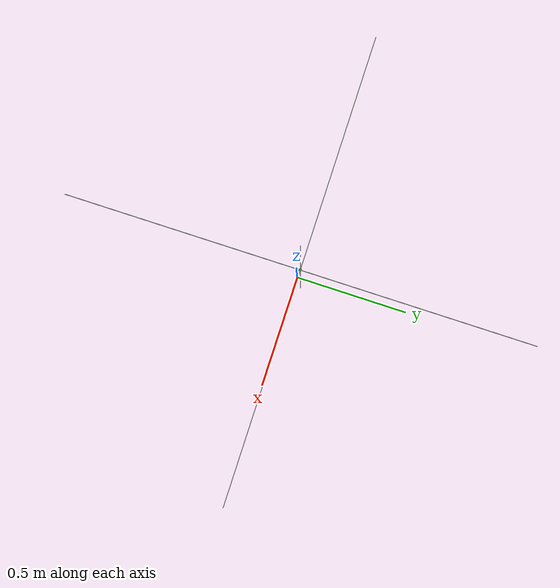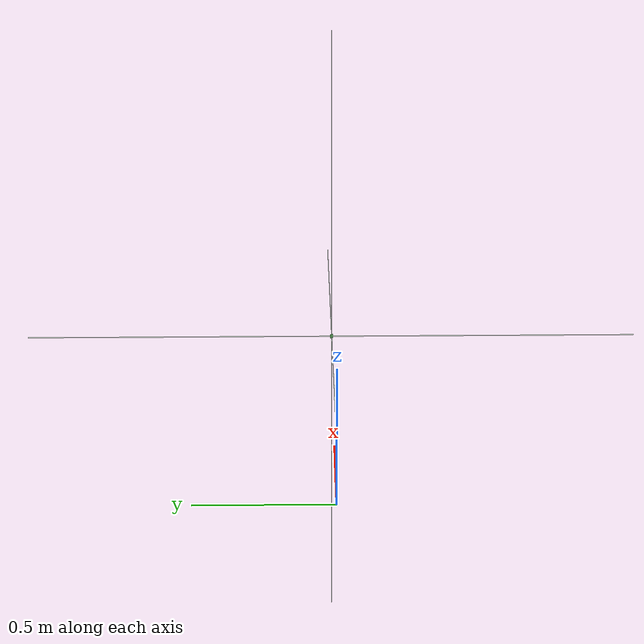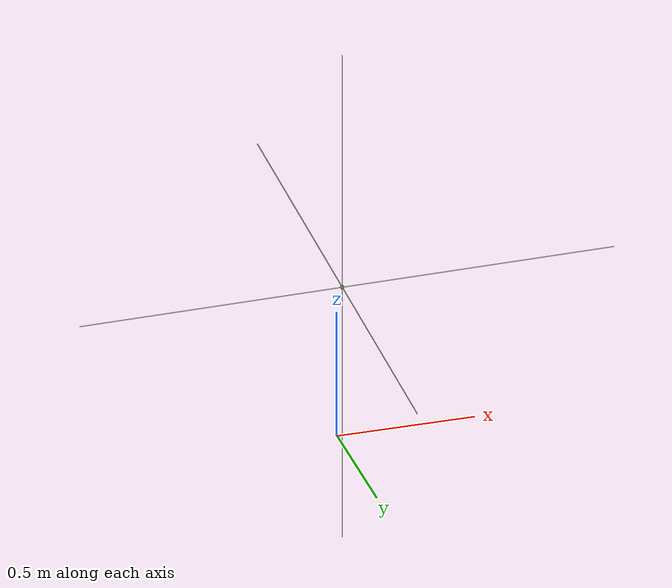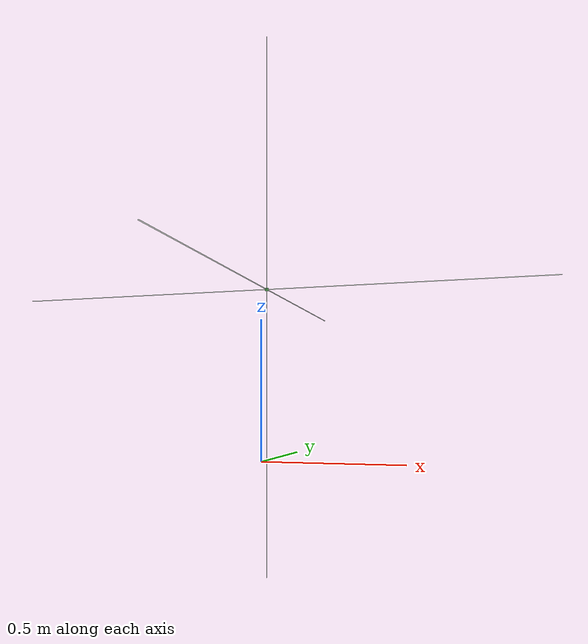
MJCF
<mujoco>
    <worldbody>
        <body mocap="true" name="robot0:mocap" pos="0.0138673  0.01864658 0.61236">
            <geom conaffinity="0" contype="0" pos="0 0 0" rgba="0 0.5 0 0.7"
                size="0.005 0.005 0.005"
                type="box"></geom>
            <geom conaffinity="0" contype="0" pos="0 0 0" rgba="0 0.5 0 0.1" size="1 0.001 0.001"
                type="box"></geom>
            <geom conaffinity="0" contype="0" pos="0 0 0" rgba="0 0.5 0 0.1" size="0.001 1 0.001"
                type="box"></geom>
            <geom conaffinity="0" contype="0" pos="0 0 0" rgba="0 0.5 0 0.1" size="0.001 0.001 1"
                type="box"></geom>
        </body>
    </worldbody>
    <equality>
        <weld name="mocap_weld" body1="robot0:mocap" body2="gripper_tcp"
            solimp="0.9 0.95
        0.001"
            solref="0.02 1"></weld>
    </equality>
</mujoco>
